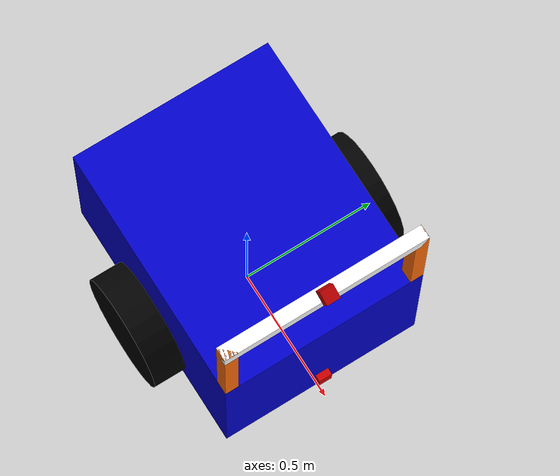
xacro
<?xml version="1.0"?>
<!--
     The Model for elsa-x, a 2-wheel drive robot with front and back caster wheels
-->
<robot name="elsax" xmlns:xacro="http://www.ros.org/wiki/xacro">

  <xacro:property name="chassis_length" value="0.94"/>
  <xacro:property name="chassis_width" value="0.75"/>
  <xacro:property name="chassis_height" value="0.59"/>
  <xacro:property name="chassis_mass" value="30"/>
  <xacro:property name="chassis_elevation" value="0.1"/>

  <xacro:property name="tower_height" value="0.4"/>
  <xacro:property name="tower_thickness" value="0.05"/>
  <xacro:property name="tower_mass" value="0"/>

  <xacro:property name="wheel_radius" value="0.21"/>
  <xacro:property name="wheel_width" value="0.12"/>
  <xacro:property name="wheel_displace" value="0.0"/>
  <xacro:property name="wheel_mass" value="1"/>

  <xacro:property name="caster_radius" value="0.04" />
  <xacro:property name="caster_mass" value="1"/>

  <xacro:property name="camera_size" value="0.05"/>
  <xacro:property name="camera_mass" value="0.1"/>
  <xacro:property name="camera_angle" value="${pi/8}"/>

  <xacro:property name="lidar_size" value="0.05"/>
  <xacro:property name="lidar_elevation" value="0.1"/>
  <xacro:property name="lidar_mass" value="0"/>
  <xacro:property name="lidar_mass" value="0"/>
  <xacro:property name="lidar_angle" value="0"/>

  <xacro:property name="gps_size" value="0.05"/>
  <xacro:property name="gps_mass" value="0"/>

  <xacro:include filename="$(find sb_gazebo)/robots/elsax.gazebo"/>
  <xacro:include filename="$(find sb_gazebo)/robots/materials.xacro"/>
  <xacro:include filename="$(find sb_gazebo)/robots/macros.xacro"/>

  <!-- Footprint of the robot (because gazebo's base_link can't have interia) -->
  <link name='base_link'/>
  <joint name="base_joint" type="fixed">
    <parent link="base_link"/>
    <child link="chassis"/>
  </joint>

  <!-- The main body of the robot -->
  <link name='chassis'>
    <collision>
      <origin xyz="0 0 ${chassis_height/2 + chassis_elevation}" rpy="0 0 0"/>
      <geometry>
        <box size="${chassis_length} ${chassis_width} ${chassis_height}"/>
      </geometry>
    </collision>
    <visual>
      <origin xyz="0 0 ${chassis_height/2 + 0.1}" rpy="0 0 0"/>
      <geometry>
        <box size="${chassis_length} ${chassis_width} ${chassis_height}"/>
      </geometry>
      <material name="blue"/>
    </visual>
    <inertial>
      <origin xyz="0 0 ${chassis_height/2 + 0.1}" rpy="0 0 0"/>
      <mass value="${chassis_mass}"/>
      <box_inertia m="${chassis_mass}" x="${chassis_length}" y="${chassis_width}" z="${chassis_height}"/>
    </inertial>
  </link>

  <!-- Drive wheels (Most of the work for these is done in macros.xacro) -->
  <wheel lr="left" tY="1" fb="centre" wheel_displacement="${wheel_displace}"/>
  <wheel lr="right" tY="-1" fb="centre" wheel_displacement="${wheel_displace}"/>

  <!-- Caster Wheels -->
  <caster_wheel lr="front" tY="0" fb="front" wheel_displacement="0.35" caster_radius="${caster_radius}"/>
  <caster_wheel lr="back" tY="0" fb="back" wheel_displacement="-0.35" caster_radius="${caster_radius}"/>

  <!-- Vertical Tower Uprights -->
  <tower_vert lr="left" tY="1" tX="1"/>
  <tower_vert lr="right" tY="-1" tX="1"/>

  <!-- Horizontal Tower Top Bar -->
  <joint name="tower_top_bar_joint" type="fixed">
    <parent link="chassis"/>
    <child link="tower_top_bar"/>
    <origin
        xyz="${(chassis_length/2) - (tower_thickness/2)} 0 ${chassis_height + chassis_elevation + tower_height - (tower_thickness/2)}"
        rpy="0 0 0"/>
  </joint>

  <link name='tower_top_bar'>

    <collision>
      <origin xyz="0 0 0" rpy="0 0 0"/>
      <geometry>
        <box size="${tower_thickness} ${chassis_width} ${tower_thickness}"/>
      </geometry>
    </collision>

    <visual>
      <origin xyz="0 0 0" rpy="0 0 0"/>
      <geometry>
        <box size="${tower_thickness} ${chassis_width} ${tower_thickness}"/>
      </geometry>
      <material name="white"/>
    </visual>

    <inertial>
      <origin xyz="0 0 0" rpy="0 0 0"/>
      <mass value="${tower_mass}"/>
      <box_inertia m="${tower_mass}" x="${tower_thickness}" y="${chassis_width}" z="${tower_thickness}"/>
    </inertial>

  </link>

  <!-- Camera -->
  <joint name="camera_joint" type="fixed">
    <parent link="chassis"/>
    <child link="camera"/>
    <origin xyz="${(chassis_length/2)} 0 ${chassis_height + chassis_elevation + tower_height + camera_size}"
            rpy="0 ${camera_angle} 0"/>
  </joint>

  <link name="camera">
    <collision>
      <origin xyz="0 0 0" rpy="0 0 0"/>
      <geometry>
        <box size="${camera_size} ${camera_size} ${camera_size}"/>
      </geometry>
    </collision>

    <visual>
      <origin xyz="0 0 0" rpy="0 0 0"/>
      <geometry>
        <box size="${camera_size} ${camera_size} ${camera_size}"/>
      </geometry>
      <material name="red"/>
    </visual>

    <inertial>
      <mass value="${camera_mass}"/>
      <origin xyz="0 0 0" rpy="0 0 0"/>
      <box_inertia m="${camera_mass}" x="${camera_size}" y="${camera_size}" z="${camera_size}"/>
    </inertial>
  </link>

  <!-- Hack to get the "zed" output to the right orientation -->
  <joint name="zed_orientation" type="fixed">
    <parent link="camera"/>
    <child link="zed_pointcloud"/>
    <origin xyz="0 0 0" rpy="${-(pi/2)} 0 ${-(pi/2)}"/>
  </joint>

  <link name="zed_pointcloud"/>

  <!-- End Hack -->

  <!-- Lidar -->
  <joint name="lidar_joint" type="fixed">
    <parent link="chassis"/>
    <child link="lidar"/>
    <origin xyz="${chassis_length/2} 0 ${chassis_elevation + lidar_elevation}" rpy="0 ${lidar_angle} 0"/>
  </joint>

  <link name="lidar">
    <collision>
      <origin xyz="0 0 0" rpy="0 0 0"/>
      <geometry>
        <box size="${lidar_size} ${lidar_size} ${lidar_size}"/>
      </geometry>
    </collision>

    <visual>
      <origin xyz="0 0 0" rpy="0 0 0"/>
      <geometry>
        <box size="${lidar_size} ${lidar_size} ${lidar_size}"/>
      </geometry>
      <material name="red"/>
    </visual>

    <inertial>
      <mass value="${lidar_mass}"/>
      <origin xyz="0 0 0" rpy="0 0 0"/>
      <box_inertia m="${lidar_mass}" x="${lidar_size}" y="${lidar_size}" z="${lidar_size}"/>
    </inertial>
  </link>

</robot>

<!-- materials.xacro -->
<!--
     The Materials for all Robots
 -->
<robot name="elsa" xmlns:xacro="http://www.ros.org/wiki/xacro">

<material name="black">
  <color rgba="0.0 0.0 0.0 1.0"/>
</material>

<material name="blue">
  <color rgba="0.0 0.0 0.8 1.0"/>
</material>

<material name="green">
  <color rgba="0.0 0.8 0.0 1.0"/>
</material>

<material name="grey">
  <color rgba="0.2 0.2 0.2 1.0"/>
</material>

<material name="orange">
  <color rgba="${255/255} ${108/255} ${10/255} 1.0"/>
</material>

<material name="brown">
  <color rgba="${222/255} ${207/255} ${195/255} 1.0"/>
</material>

<material name="red">
  <color rgba="0.8 0.0 0.0 1.0"/>
</material>

<material name="white">
  <color rgba="1.0 1.0 1.0 1.0"/>
</material>

</robot>

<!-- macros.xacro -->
<!--
    A Useful set of macros, mostly for generating model parts
-->
<robot name="robot" xmlns:xacro="http://www.ros.org/wiki/xacro">

<!-- Calculate the intertia settings for a cylinder with given mass, radius, height -->
<xacro:macro name="cylinder_inertia" params="m r h">
  <inertia  ixx="${m*(3*r*r+h*h)/12}" ixy = "0" ixz = "0"
    iyy="${m*(3*r*r+h*h)/12}" iyz = "0"
    izz="${m*r*r/2}"
  />
</xacro:macro>

<!-- Calculate the intertia settings for a box with given mass, x size, y size, z size -->
<xacro:macro name="box_inertia" params="m x y z">
  <inertia  ixx="${m*(y*y+z*z)/12}" ixy = "0" ixz = "0"
    iyy="${m*(x*x+z*z)/12}" iyz = "0"
    izz="${m*(x*x+z*z)/12}"
  />
</xacro:macro>

<!-- Calculate the intertia settings for a sphere with given mass, radius -->
<xacro:macro name="sphere_inertia" params="m r">
  <inertia  ixx="${2*m*r*r/5}" ixy = "0" ixz = "0"
    iyy="${2*m*r*r/5}" iyz = "0"
    izz="${2*m*r*r/5}"
  />
</xacro:macro>

<!--
     Creates a box link
-->
<xacro:macro name="box_link"
    params="name x_pos y_pos z_pos x_size y_size z_size roll pitch yaw mass material_name">
    <link name="${name}">
        <collision>
            <origin xyz="${x_pos} ${y_pos} ${z_pos}" rpy="${roll} ${pitch} ${yaw}"/>
            <geometry>
                <box size="${y_size} ${x_size} ${z_size}"/>
            </geometry>
        </collision>
        <visual>
            <origin xyz="${x_pos} ${y_pos} ${z_pos}" rpy="${roll} ${pitch} ${yaw}"/>
            <geometry>
                <box size="${y_size} ${x_size} ${z_size}"/>
            </geometry>
            <material name="${material_name}"/>
        </visual>
        <inertial>
            <origin xyz="${x_pos} ${y_pos} ${z_pos}" rpy="${roll} ${pitch} ${yaw}"/>
            <mass value="${mass}"/>
            <box_inertia m="${mass}" x="${x_size}" y="${y_size}" z="${z_size}"/>
        </inertial>
    </link>
</xacro:macro>

<!--
     Creates a cylinder link
-->
<xacro:macro name="cylinder_link"
    params="name x_pos y_pos z_pos radius length roll pitch yaw mass material_name">
    <link name="${name}">
        <collision>
            <origin xyz="${x_pos} ${y_pos} ${z_pos}" rpy="${roll} ${pitch} ${yaw}"/>
            <geometry>
                <cylinder radius="${radius}" length="${length}"/>
            </geometry>
        </collision>
        <visual>
            <origin xyz="${x_pos} ${y_pos} ${z_pos}" rpy="${roll} ${pitch} ${yaw}"/>
            <geometry>
                <cylinder radius="${radius}" length="${length}"/>
            </geometry>
            <material name="${material_name}"/>
        </visual>
        <inertial>
            <origin xyz="${x_pos} ${y_pos} ${z_pos}" rpy="${roll} ${pitch} ${yaw}"/>
            <mass value="${mass}"/>
            <cylinder_inertia m="${mass}" r="${radius}" h="${length}"/>
        </inertial>
    </link>
</xacro:macro>

<!-- Macro to generate wheels -->
<xacro:macro name="wheel" params="lr tY wheel_displacement fb">

<link name="${lr}_${fb}_wheel">
  <collision>
    <origin xyz="0 0 0" rpy="0 ${pi/2} ${pi/2}" />
    <geometry>
      <cylinder length="${wheel_width}" radius="${wheel_radius}"/>
    </geometry>
  </collision>

  <visual>
    <origin xyz="0 0 0" rpy="0 ${pi/2} ${pi/2}" />
    <geometry>
      <cylinder length="${wheel_width}" radius="${wheel_radius}"/>
    </geometry>
    <material name="black"/>
  </visual>

  <inertial>
    <origin xyz="0 0 0" rpy="0 ${pi/2} ${pi/2}" />
    <mass value="${wheel_mass}"/>
    <cylinder_inertia m="${wheel_mass}" r="${wheel_radius}" h="${wheel_width}"/>
  </inertial>
</link>

<gazebo reference="${lr}_${fb}_wheel">
  <mu1 value="10.0"/>
  <mu2 value="1.0"/>
  <kp  value="10000000.0" />
  <kd  value="1.0" />
  <fdir1 value="1 0 0"/>
  <material>Gazebo/Black</material>
</gazebo>

<joint name="${lr}_${fb}_wheel_hinge" type="continuous">
  <parent link="chassis"/>
  <child link="${lr}_${fb}_wheel"/>
  <origin xyz="${wheel_displacement} ${tY*wheel_width/2+tY*chassis_width/2} ${wheel_radius}" rpy="0 0 0" />
  <axis xyz="0 1 0" rpy="0 0 0" />
  <limit effort="100" velocity="100"/>
  <joint_properties damping="0.0" friction="0.0"/>
  <hardwareInterface>EffortJointInterface</hardwareInterface>
</joint>

<transmission name="${lr}_${fb}_trans">
  <type>transmission_interface/SimpleTransmission</type>
  <joint name="${lr}_${fb}_wheel_hinge">
    <hardwareInterface>EffortJointInterface</hardwareInterface>
  </joint>
  <actuator name="${lr}_${fb}_Motor">
    <hardwareInterface>EffortJointInterface</hardwareInterface>
    <mechanicalReduction>10</mechanicalReduction>
  </actuator>
</transmission>
</xacro:macro>

<!-- Macro to generate caster wheels -->
<xacro:macro name="caster_wheel" params="lr tY wheel_displacement fb caster_radius:=${wheel_radius}">

<link name="${lr}_${fb}_caster_wheel">
  <collision>
    <origin xyz="0 0 0" rpy="0 ${pi/2} ${pi/2}" />
    <geometry>
      <sphere radius="${caster_radius}"/>
    </geometry>
    <surface>
      <friction>
        <ode>
          <mu>0</mu>
          <mu2>0</mu2>
          <slip1>1</slip1>
          <slip2>1</slip2>
        </ode>
      </friction>
    </surface>
  </collision>

  <visual>
    <origin xyz="0 0 0" rpy="0 ${pi/2} ${pi/2}" />
    <geometry>
      <sphere radius="${caster_radius}"/>
    </geometry>
    <material name="black"/>
  </visual>

  <inertial>
    <origin xyz="0 0 0" rpy="0 ${pi/2} ${pi/2}" />
    <mass value="0"/>
    <sphere_inertia m="0" r="0"/>
  </inertial>
</link>

<gazebo reference="${lr}_${fb}_caster_wheel">
  <mu1 value="0.0"/>
  <mu2 value="0.0"/>
  <material>Gazebo/Black</material>
</gazebo>

<joint name="${lr}_${fb}_wheel_hinge" type="fixed">
  <parent link="chassis"/>
  <child link="${lr}_${fb}_caster_wheel"/>
  <origin xyz="${wheel_displacement} ${-tY*caster_radius+tY*chassis_width/2} ${caster_radius}" rpy="0 0 0" />
</joint>

</xacro:macro>

<!-- Macro to generate vertical tower uprights -->
<xacro:macro name="tower_vert" params="lr tX:=-1 tY">

<joint name="${lr}_tower_joint" type="fixed">
  <parent link="chassis"/>
  <child link="tower_${lr}"/>
  <origin xyz="${tX * ((chassis_length/2) - (tower_thickness/2))} ${tY * ((chassis_width/2) - (tower_thickness/2))} ${chassis_height + chassis_elevation + (tower_height/2)}" rpy="0 0 0"/>
</joint>

<link name='tower_${lr}'>

<collision>
    <origin xyz="0 0 0" rpy="0 0 0"/>
    <geometry>
        <box size="${tower_thickness} ${tower_thickness} ${tower_height}"/>
    </geometry>
</collision>

<visual>
    <origin xyz="0 0 0" rpy="0 0 0"/>
    <geometry>
        <box size="${tower_thickness} ${tower_thickness} ${tower_height}"/>
    </geometry>
    <material name="orange"/>
</visual>

<inertial>
    <origin xyz="0 0 0" rpy="0 0 0"/>
    <mass value="${tower_mass}"/>
    <box_inertia m="${tower_mass}" x="${tower_thickness}" y="${tower_thickness}" z="${tower_height}"/>
</inertial>

</link>
</xacro:macro>

</robot>
